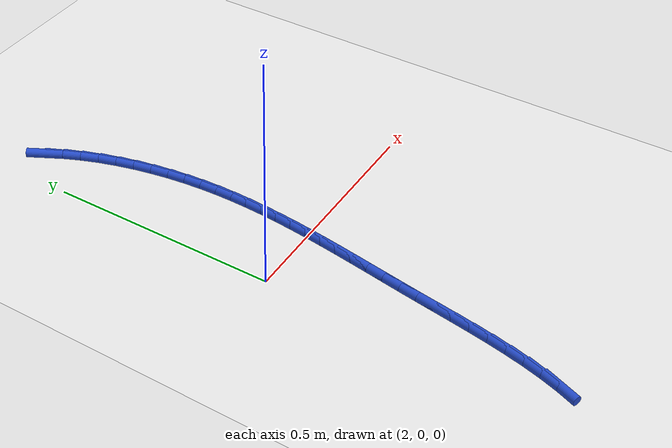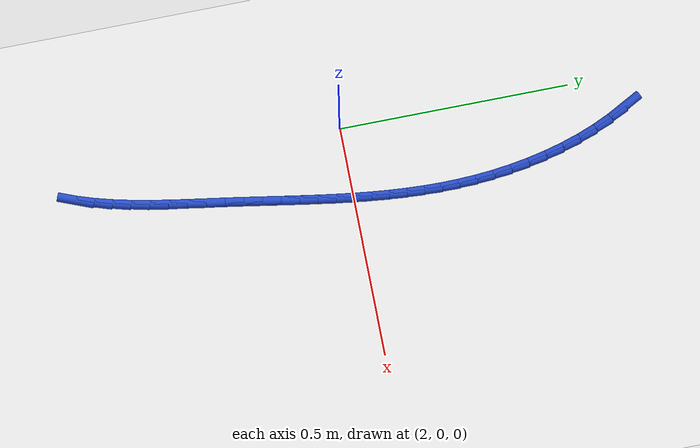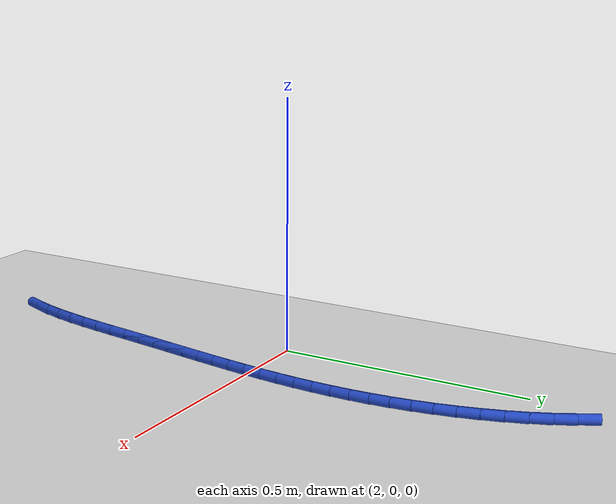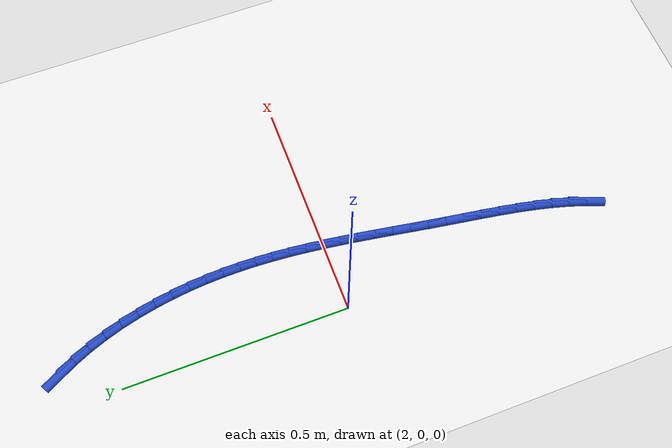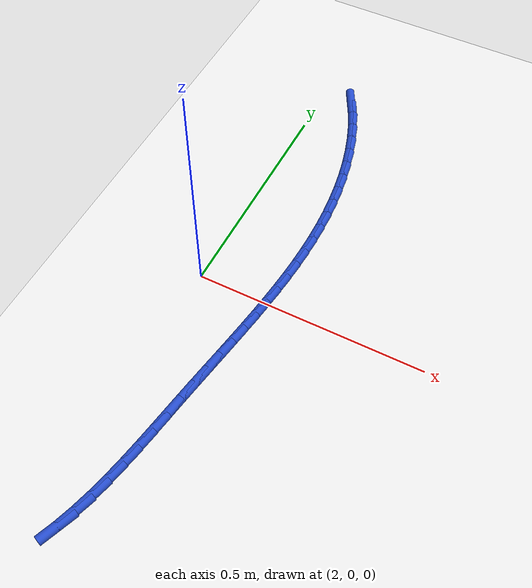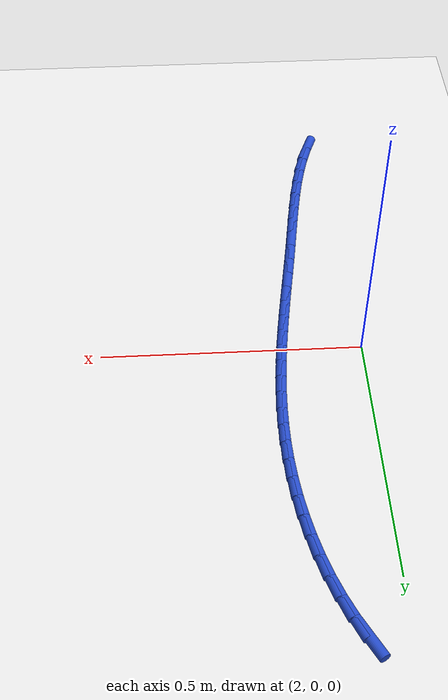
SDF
<sdf version="1.6">
 <world name="default">
  <model name="ground_plane">
   <static>1</static>
   <link name="link">
    <collision name="collision">
     <geometry><plane><normal>0 0 1</normal><size>100 100</size></plane></geometry>
     <surface><friction><ode><mu>100</mu><mu2>50</mu2></ode></friction></surface>
    </collision>
    <visual name="visual">
     <cast_shadows>0</cast_shadows>
     <geometry><plane><normal>0 0 1</normal><size>100 100</size></plane></geometry>
     <material>
      <script><uri>file://media/materials/scripts/gazebo.material</uri><name>Gazebo/WhiteGlow</name></script>
     </material>
    </visual>
   </link>
  </model>
  <model name="line">
   <link name="link_78">
    <pose>2.0711284287815634 0.6107759750377052 0.01 0 1.57 -1.0826710046783337</pose>
    <collision name="collision">
     <geometry><cylinder><radius>0.01</radius><length>0.08</length></cylinder></geometry>
    </collision>
    <visual name="visual">
     <material>
      <script><name>Gazebo/Blue</name><uri>file://media/materials/scripts/gazebo.material</uri></script>
     </material>
     <geometry><cylinder><radius>0.01</radius><length>0.08</length></cylinder></geometry>
    </visual>
   </link>
   <link name="link_79">
    <pose>2.0897354734881044 0.5757333060173389 0.01 0 1.57 -1.1510547761441032</pose>
    <collision name="collision">
     <geometry><cylinder><radius>0.01</radius><length>0.08</length></cylinder></geometry>
    </collision>
    <visual name="visual">
     <material>
      <script><name>Gazebo/Blue</name><uri>file://media/materials/scripts/gazebo.material</uri></script>
     </material>
     <geometry><cylinder><radius>0.01</radius><length>0.08</length></cylinder></geometry>
    </visual>
   </link>
   <link name="link_80">
    <pose>2.106119530615346 0.5390193679440467 0.01 0 1.57 -1.2122848672200714</pose>
    <collision name="collision">
     <geometry><cylinder><radius>0.01</radius><length>0.08</length></cylinder></geometry>
    </collision>
    <visual name="visual">
     <material>
      <script><name>Gazebo/Blue</name><uri>file://media/materials/scripts/gazebo.material</uri></script>
     </material>
     <geometry><cylinder><radius>0.01</radius><length>0.08</length></cylinder></geometry>
    </visual>
   </link>
   <link name="link_81">
    <pose>2.120363055504062 0.5010066673699684 0.01 0 1.57 -1.2675132056081804</pose>
    <collision name="collision">
     <geometry><cylinder><radius>0.01</radius><length>0.08</length></cylinder></geometry>
    </collision>
    <visual name="visual">
     <material>
      <script><name>Gazebo/Blue</name><uri>file://media/materials/scripts/gazebo.material</uri></script>
     </material>
     <geometry><cylinder><radius>0.01</radius><length>0.08</length></cylinder></geometry>
    </visual>
   </link>
   <link name="link_82">
    <pose>2.132548503495024 0.46206771084724463 0.01 0 1.57 -1.3178109694370566</pose>
    <collision name="collision">
     <geometry><cylinder><radius>0.01</radius><length>0.08</length></cylinder></geometry>
    </collision>
    <visual name="visual">
     <material>
      <script><name>Gazebo/Blue</name><uri>file://media/materials/scripts/gazebo.material</uri></script>
     </material>
     <geometry><cylinder><radius>0.01</radius><length>0.08</length></cylinder></geometry>
    </visual>
   </link>
   <link name="link_83">
    <pose>2.142758329929003 0.4225750049280156 0.01 0 1.57 -1.3641631103957979</pose>
    <collision name="collision">
     <geometry><cylinder><radius>0.01</radius><length>0.08</length></cylinder></geometry>
    </collision>
    <visual name="visual">
     <material>
      <script><name>Gazebo/Blue</name><uri>file://media/materials/scripts/gazebo.material</uri></script>
     </material>
     <geometry><cylinder><radius>0.01</radius><length>0.08</length></cylinder></geometry>
    </visual>
   </link>
   <link name="link_84">
    <pose>2.1510749901467747 0.3829010561644212 0.01 0 1.57 -1.4074950535915736</pose>
    <collision name="collision">
     <geometry><cylinder><radius>0.01</radius><length>0.08</length></cylinder></geometry>
    </collision>
    <visual name="visual">
     <material>
      <script><name>Gazebo/Blue</name><uri>file://media/materials/scripts/gazebo.material</uri></script>
     </material>
     <geometry><cylinder><radius>0.01</radius><length>0.08</length></cylinder></geometry>
    </visual>
   </link>
   <link name="link_85">
    <pose>2.15758147795195 0.34341239964667186 0.01 0 1.57 -1.448814769078173</pose>
    <collision name="collision">
     <geometry><cylinder><radius>0.01</radius><length>0.08</length></cylinder></geometry>
    </collision>
    <visual name="visual">
     <material>
      <script><name>Gazebo/Blue</name><uri>file://media/materials/scripts/gazebo.material</uri></script>
     </material>
     <geometry><cylinder><radius>0.01</radius><length>0.08</length></cylinder></geometry>
    </visual>
   </link>
   <link name="link_86">
    <pose>2.162377576819061 0.30428937585121263 0.01 0 1.57 -1.4883659673567584</pose>
    <collision name="collision">
     <geometry><cylinder><radius>0.01</radius><length>0.08</length></cylinder></geometry>
    </collision>
    <visual name="visual">
     <material>
      <script><name>Gazebo/Blue</name><uri>file://media/materials/scripts/gazebo.material</uri></script>
     </material>
     <geometry><cylinder><radius>0.01</radius><length>0.08</length></cylinder></geometry>
    </visual>
   </link>
   <link name="link_87">
    <pose>2.1655827472355593 0.26549411050572175 0.01 0 1.57 -1.5257872405074548</pose>
    <collision name="collision">
     <geometry><cylinder><radius>0.01</radius><length>0.08</length></cylinder></geometry>
    </collision>
    <visual name="visual">
     <material>
      <script><name>Gazebo/Blue</name><uri>file://media/materials/scripts/gazebo.material</uri></script>
     </material>
     <geometry><cylinder><radius>0.01</radius><length>0.08</length></cylinder></geometry>
    </visual>
   </link>
   <link name="link_88">
    <pose>2.167317570182435 0.22697630325386206 0.01 0 1.57 -1.5607405172393596</pose>
    <collision name="collision">
     <geometry><cylinder><radius>0.01</radius><length>0.08</length></cylinder></geometry>
    </collision>
    <visual name="visual">
     <material>
      <script><name>Gazebo/Blue</name><uri>file://media/materials/scripts/gazebo.material</uri></script>
     </material>
     <geometry><cylinder><radius>0.01</radius><length>0.08</length></cylinder></geometry>
    </visual>
   </link>
   <link name="link_89">
    <pose>2.1677026266406796 0.18868565373929555 0.01 0 1.57 1.5486523462803707</pose>
    <collision name="collision">
     <geometry><cylinder><radius>0.01</radius><length>0.08</length></cylinder></geometry>
    </collision>
    <visual name="visual">
     <material>
      <script><name>Gazebo/Blue</name><uri>file://media/materials/scripts/gazebo.material</uri></script>
     </material>
     <geometry><cylinder><radius>0.01</radius><length>0.08</length></cylinder></geometry>
    </visual>
   </link>
   <link name="link_90">
    <pose>2.166858497591282 0.15057186160568453 0.01 0 1.57 1.5194365403591128</pose>
    <collision name="collision">
     <geometry><cylinder><radius>0.01</radius><length>0.08</length></cylinder></geometry>
    </collision>
    <visual name="visual">
     <material>
      <script><name>Gazebo/Blue</name><uri>file://media/materials/scripts/gazebo.material</uri></script>
     </material>
     <geometry><cylinder><radius>0.01</radius><length>0.08</length></cylinder></geometry>
    </visual>
   </link>
   <link name="link_91">
    <pose>2.164905764015232 0.11258462649669031 0.01 0 1.57 1.4933812836000135</pose>
    <collision name="collision">
     <geometry><cylinder><radius>0.01</radius><length>0.08</length></cylinder></geometry>
    </collision>
    <visual name="visual">
     <material>
      <script><name>Gazebo/Blue</name><uri>file://media/materials/scripts/gazebo.material</uri></script>
     </material>
     <geometry><cylinder><radius>0.01</radius><length>0.08</length></cylinder></geometry>
    </visual>
   </link>
   <link name="link_92">
    <pose>2.1619650068935203 0.07467364805597547 0.01 0 1.57 1.4706129209182874</pose>
    <collision name="collision">
     <geometry><cylinder><radius>0.01</radius><length>0.08</length></cylinder></geometry>
    </collision>
    <visual name="visual">
     <material>
      <script><name>Gazebo/Blue</name><uri>file://media/materials/scripts/gazebo.material</uri></script>
     </material>
     <geometry><cylinder><radius>0.01</radius><length>0.08</length></cylinder></geometry>
    </visual>
   </link>
   <link name="link_93">
    <pose>2.1581568072071367 0.03678862592720244 0.01 0 1.57 1.4512130078775365</pose>
    <collision name="collision">
     <geometry><cylinder><radius>0.01</radius><length>0.08</length></cylinder></geometry>
    </collision>
    <visual name="visual">
     <material>
      <script><name>Gazebo/Blue</name><uri>file://media/materials/scripts/gazebo.material</uri></script>
     </material>
     <geometry><cylinder><radius>0.01</radius><length>0.08</length></cylinder></geometry>
    </visual>
   </link>
   <link name="link_94">
    <pose>2.1536017459370718 -0.00112074024596754 0.01 0 1.57 1.4352245693179695</pose>
    <collision name="collision">
     <geometry><cylinder><radius>0.01</radius><length>0.08</length></cylinder></geometry>
    </collision>
    <visual name="visual">
     <material>
      <script><name>Gazebo/Blue</name><uri>file://media/materials/scripts/gazebo.material</uri></script>
     </material>
     <geometry><cylinder><radius>0.01</radius><length>0.08</length></cylinder></geometry>
    </visual>
   </link>
   <link name="link_95">
    <pose>2.1484204040643142 -0.039104750819872 0.01 0 1.57 1.4226584399362203</pose>
    <collision name="collision">
     <geometry><cylinder><radius>0.01</radius><length>0.08</length></cylinder></geometry>
    </collision>
    <visual name="visual">
     <material>
      <script><name>Gazebo/Blue</name><uri>file://media/materials/scripts/gazebo.material</uri></script>
     </material>
     <geometry><cylinder><radius>0.01</radius><length>0.08</length></cylinder></geometry>
    </visual>
   </link>
   <link name="link_96">
    <pose>2.1427333625698557 -0.07721370615084877 0.01 0 1.57 1.4134991308408238</pose>
    <collision name="collision">
     <geometry><cylinder><radius>0.01</radius><length>0.08</length></cylinder></geometry>
    </collision>
    <visual name="visual">
     <material>
      <script><name>Gazebo/Blue</name><uri>file://media/materials/scripts/gazebo.material</uri></script>
     </material>
     <geometry><cylinder><radius>0.01</radius><length>0.08</length></cylinder></geometry>
    </visual>
   </link>
   <link name="link_97">
    <pose>2.136661202434686 -0.11549790659523594 0.01 0 1.57 1.407709858329337</pose>
    <collision name="collision">
     <geometry><cylinder><radius>0.01</radius><length>0.08</length></cylinder></geometry>
    </collision>
    <visual name="visual">
     <material>
      <script><name>Gazebo/Blue</name><uri>file://media/materials/scripts/gazebo.material</uri></script>
     </material>
     <geometry><cylinder><radius>0.01</radius><length>0.08</length></cylinder></geometry>
    </visual>
   </link>
   <link name="link_98">
    <pose>2.1303245046397947 -0.15400765250937049 0.01 0 1.57 1.4052365395207636</pose>
    <collision name="collision">
     <geometry><cylinder><radius>0.01</radius><length>0.08</length></cylinder></geometry>
    </collision>
    <visual name="visual">
     <material>
      <script><name>Gazebo/Blue</name><uri>file://media/materials/scripts/gazebo.material</uri></script>
     </material>
     <geometry><cylinder><radius>0.01</radius><length>0.08</length></cylinder></geometry>
    </visual>
   </link>
   <link name="link_99">
    <pose>2.1238438501661716 -0.192793244249592 0.01 0 1.57 1.4060106931762275</pose>
    <collision name="collision">
     <geometry><cylinder><radius>0.01</radius><length>0.08</length></cylinder></geometry>
    </collision>
    <visual name="visual">
     <material>
      <script><name>Gazebo/Blue</name><uri>file://media/materials/scripts/gazebo.material</uri></script>
     </material>
     <geometry><cylinder><radius>0.01</radius><length>0.08</length></cylinder></geometry>
    </visual>
   </link>
   <link name="link_100">
    <pose>2.1173398199948075 -0.2319049821722376 0.01 0 1.57 1.4099512828807024</pose>
    <collision name="collision">
     <geometry><cylinder><radius>0.01</radius><length>0.08</length></cylinder></geometry>
    </collision>
    <visual name="visual">
     <material>
      <script><name>Gazebo/Blue</name><uri>file://media/materials/scripts/gazebo.material</uri></script>
     </material>
     <geometry><cylinder><radius>0.01</radius><length>0.08</length></cylinder></geometry>
    </visual>
   </link>
   <link name="link_101">
    <pose>2.110932995106692 -0.27139316663364527 0.01 0 1.57 1.4157534463300914</pose>
    <collision name="collision">
     <geometry><cylinder><radius>0.01</radius><length>0.08</length></cylinder></geometry>
    </collision>
    <visual name="visual">
     <material>
      <script><name>Gazebo/Blue</name><uri>file://media/materials/scripts/gazebo.material</uri></script>
     </material>
     <geometry><cylinder><radius>0.01</radius><length>0.08</length></cylinder></geometry>
    </visual>
   </link>
   <link name="link_102">
    <pose>2.1046990493926594 -0.3112783540144613 0.01 0 1.57 1.4163641332261079</pose>
    <collision name="collision">
     <geometry><cylinder><radius>0.01</radius><length>0.08</length></cylinder></geometry>
    </collision>
    <visual name="visual">
     <material>
      <script><name>Gazebo/Blue</name><uri>file://media/materials/scripts/gazebo.material</uri></script>
     </material>
     <geometry><cylinder><radius>0.01</radius><length>0.08</length></cylinder></geometry>
    </visual>
   </link>
   <link name="link_103">
    <pose>2.098452027652399 -0.3514078120386868 0.01 0 1.57 1.4093453450265125</pose>
    <collision name="collision">
     <geometry><cylinder><radius>0.01</radius><length>0.08</length></cylinder></geometry>
    </collision>
    <visual name="visual">
     <material>
      <script><name>Gazebo/Blue</name><uri>file://media/materials/scripts/gazebo.material</uri></script>
     </material>
     <geometry><cylinder><radius>0.01</radius><length>0.08</length></cylinder></geometry>
    </visual>
   </link>
   <link name="link_104">
    <pose>2.091911484230375 -0.3915662231727708 0.01 0 1.57 1.3946502730597423</pose>
    <collision name="collision">
     <geometry><cylinder><radius>0.01</radius><length>0.08</length></cylinder></geometry>
    </collision>
    <visual name="visual">
     <material>
      <script><name>Gazebo/Blue</name><uri>file://media/materials/scripts/gazebo.material</uri></script>
     </material>
     <geometry><cylinder><radius>0.01</radius><length>0.08</length></cylinder></geometry>
    </visual>
   </link>
   <link name="link_105">
    <pose>2.0847968452516876 -0.4315381849577385 0.01 0 1.57 1.3720576899919326</pose>
    <collision name="collision">
     <geometry><cylinder><radius>0.01</radius><length>0.08</length></cylinder></geometry>
    </collision>
    <visual name="visual">
     <material>
      <script><name>Gazebo/Blue</name><uri>file://media/materials/scripts/gazebo.material</uri></script>
     </material>
     <geometry><cylinder><radius>0.01</radius><length>0.08</length></cylinder></geometry>
    </visual>
   </link>
   <link name="link_106">
    <pose>2.0768275368414364 -0.4711082949346177 0.01 0 1.57 1.3411857885740945</pose>
    <collision name="collision">
     <geometry><cylinder><radius>0.01</radius><length>0.08</length></cylinder></geometry>
    </collision>
    <visual name="visual">
     <material>
      <script><name>Gazebo/Blue</name><uri>file://media/materials/scripts/gazebo.material</uri></script>
     </material>
     <geometry><cylinder><radius>0.01</radius><length>0.08</length></cylinder></geometry>
    </visual>
   </link>
   <link name="link_107">
    <pose>2.067722985124721 -0.5100611506444337 0.01 0 1.57 1.3015203093908239</pose>
    <collision name="collision">
     <geometry><cylinder><radius>0.01</radius><length>0.08</length></cylinder></geometry>
    </collision>
    <visual name="visual">
     <material>
      <script><name>Gazebo/Blue</name><uri>file://media/materials/scripts/gazebo.material</uri></script>
     </material>
     <geometry><cylinder><radius>0.01</radius><length>0.08</length></cylinder></geometry>
    </visual>
   </link>
   <link name="link_108">
    <pose>2.0572026162266432 -0.5481813496282127 0.01 0 1.57 1.2524634782000443</pose>
    <collision name="collision">
     <geometry><cylinder><radius>0.01</radius><length>0.08</length></cylinder></geometry>
    </collision>
    <visual name="visual">
     <material>
      <script><name>Gazebo/Blue</name><uri>file://media/materials/scripts/gazebo.material</uri></script>
     </material>
     <geometry><cylinder><radius>0.01</radius><length>0.08</length></cylinder></geometry>
    </visual>
   </link>
   <link name="link_109">
    <pose>2.0449858562723016 -0.5852534894269807 0.01 0 1.57 1.193417400572968</pose>
    <collision name="collision">
     <geometry><cylinder><radius>0.01</radius><length>0.08</length></cylinder></geometry>
    </collision>
    <visual name="visual">
     <material>
      <script><name>Gazebo/Blue</name><uri>file://media/materials/scripts/gazebo.material</uri></script>
     </material>
     <geometry><cylinder><radius>0.01</radius><length>0.08</length></cylinder></geometry>
    </visual>
   </link>
  </model>
 </world>
</sdf>
